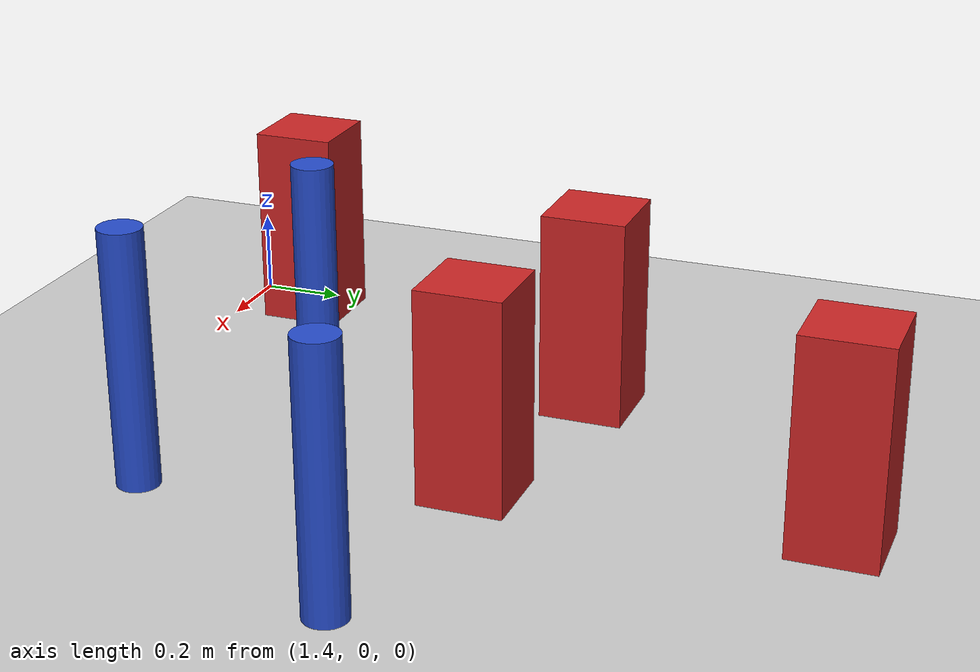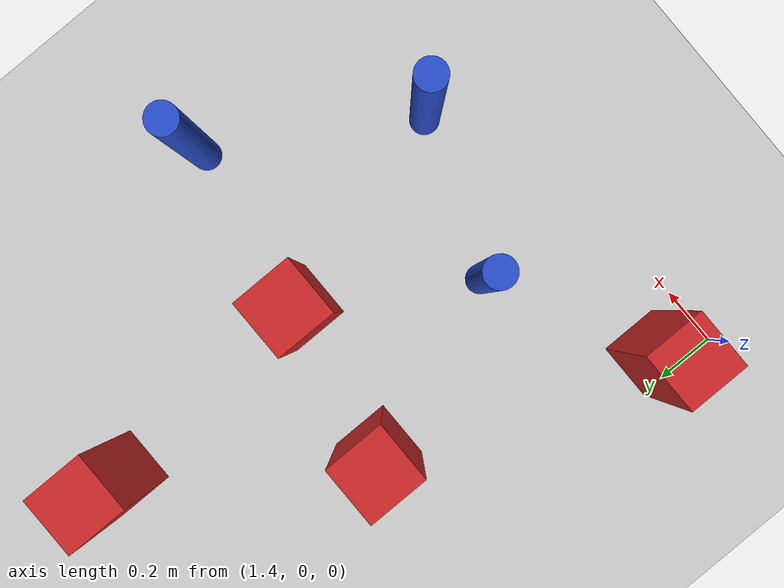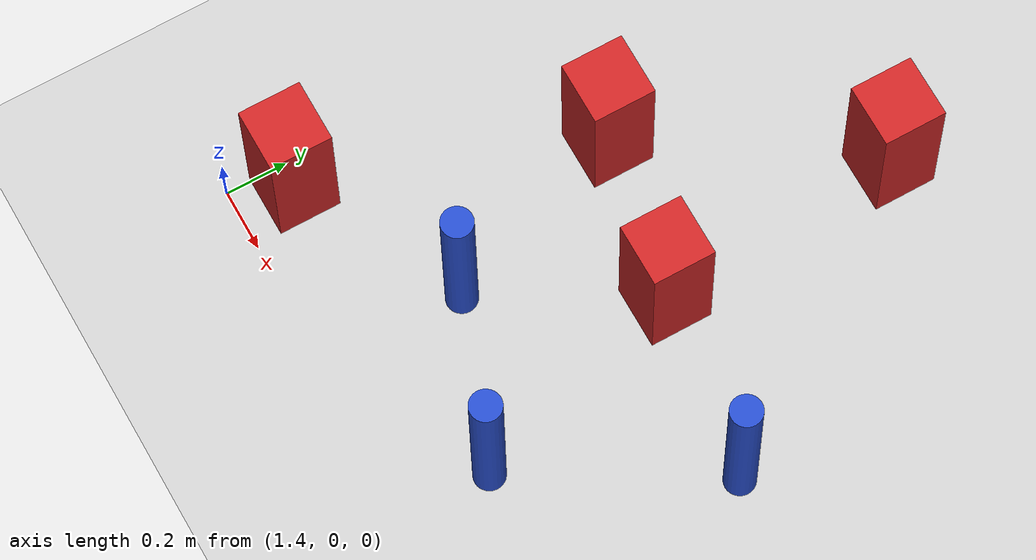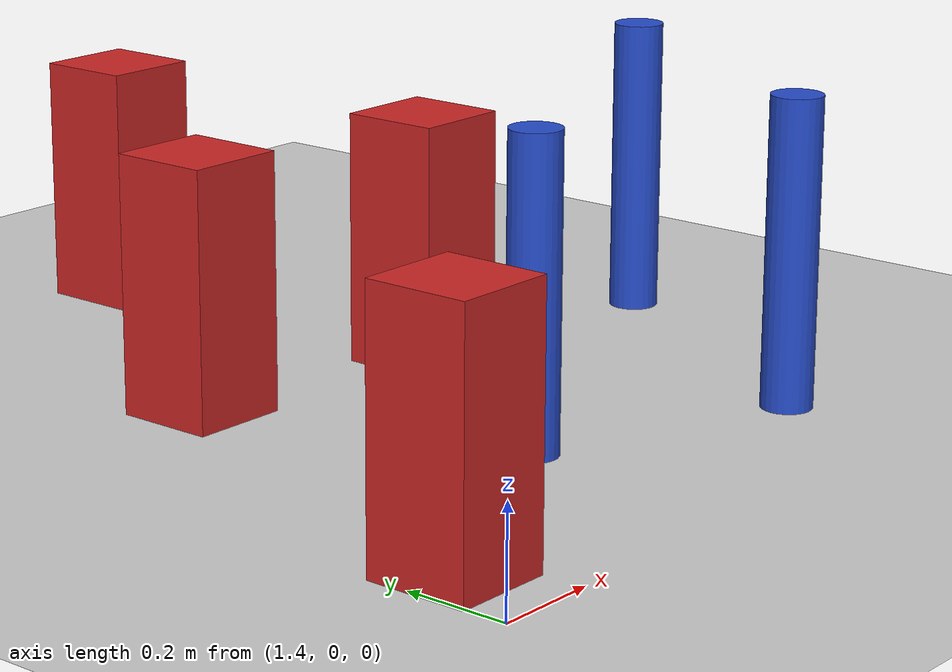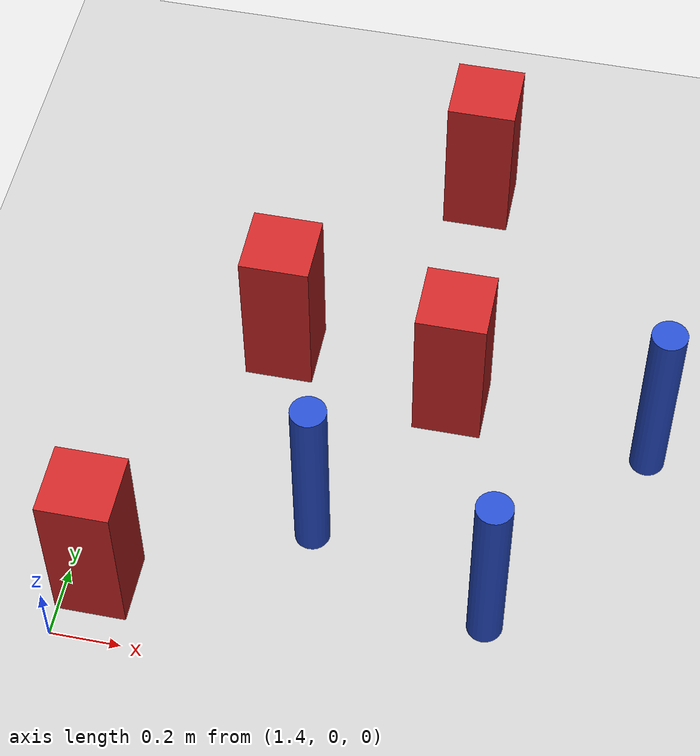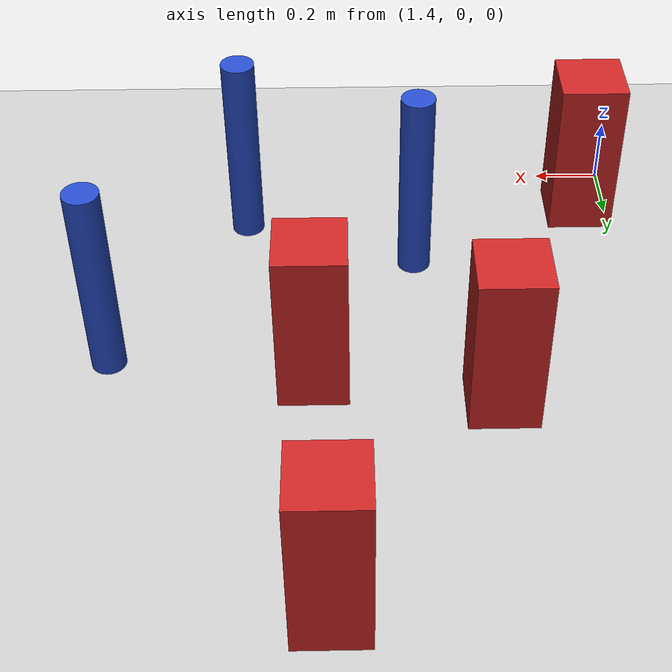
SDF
<sdf version="1.6">
 <world name="default">
  <model name="ground_plane">
   <static>1</static>
   <link name="link">
    <collision name="collision">
     <geometry><plane><normal>0 0 1</normal><size>100 100</size></plane></geometry>
     <surface><friction><ode><mu>100</mu><mu2>50</mu2></ode></friction></surface>
    </collision>
    <visual name="visual">
     <cast_shadows>0</cast_shadows>
     <geometry><plane><normal>0 0 1</normal><size>100 100</size></plane></geometry>
     <material>
      <ambient>1.0 1.0 1.0 1.0</ambient>
      <diffuse>0.8 0.8 0.8 1.0</diffuse>
      <specular>0.01 0.01 0.01 1.000000</specular>
     </material>
    </visual>
   </link>
  </model>
  <model name="pole_obstacle56">
   <static>true</static>
   <pose>2.03568391977 0.451290150566 7.38925637345e-09 -8.47170692799e-08 1.24976765122e-08 -1.74513093015e-07</pose>
   <link name="link">
    <pose>0 0 0.3 0 -0 0</pose>
    <inertial>
     <mass>1</mass>
     <inertia><ixx>0.145833</ixx><ixy>0</ixy><ixz>0</ixz><iyy>0.145833</iyy><iyz>0</iyz><izz>0.125</izz></inertia>
    </inertial>
    <collision name="collision">
     <geometry><cylinder><radius>0.05</radius><length>.6</length></cylinder></geometry>
    </collision>
    <visual name="visual">
     <geometry><cylinder><radius>0.05</radius><length>.6</length></cylinder></geometry>
     <material>
      <script><name>Gazebo/Blue</name><uri>file://media/materials/scripts/gazebo.material</uri></script>
     </material>
    </visual>
   </link>
  </model>
  <model name="pole_obstacle100">
   <static>true</static>
   <pose>2.55865952431 0.255963174134 7.38925637345e-09 -8.471706928e-08 1.24976765126e-08 -1.74513093015e-07</pose>
   <link name="link">
    <pose>0 0 0.3 0 -0 0</pose>
    <inertial>
     <mass>1</mass>
     <inertia><ixx>0.145833</ixx><ixy>0</ixy><ixz>0</ixz><iyy>0.145833</iyy><iyz>0</iyz><izz>0.125</izz></inertia>
    </inertial>
    <collision name="collision">
     <geometry><cylinder><radius>0.05</radius><length>.6</length></cylinder></geometry>
    </collision>
    <visual name="visual">
     <geometry><cylinder><radius>0.05</radius><length>.6</length></cylinder></geometry>
     <material>
      <script><name>Gazebo/Blue</name><uri>file://media/materials/scripts/gazebo.material</uri></script>
     </material>
    </visual>
   </link>
  </model>
  <model name="square_post_obstacle98">
   <static>true</static>
   <pose>2.34094670929 0.967388931751 1.91545236811e-07 -7.35059704564e-06 1.12565212e-07 2.39332434364e-05</pose>
   <link name="link">
    <pose>0 0 0.25 0 -0 0</pose>
    <inertial>
     <mass>100</mass>
     <inertia>
      <ixx>0.166667</ixx>
      <ixy>0</ixy>
      <ixz>0</ixz>
      <iyy>0.166667</iyy>
      <iyz>0</iyz>
      <izz>0.166667</izz>
     </inertia>
    </inertial>
    <collision name="collision"><geometry><box><size>.2 .2 .5</size></box></geometry></collision>
    <visual name="visual">
     <geometry><box><size>.2 .2 .5</size></box></geometry>
     <material>
      <script><name>Gazebo/Red</name><uri>file://media/materials/scripts/gazebo.material</uri></script>
     </material>
    </visual>
   </link>
  </model>
  <model name="square_post_obstacle108">
   <static>true</static>
   <pose>1.82022127979 1.06612872411 1.91545236811e-07 -7.35059704564e-06 1.12565212e-07 2.39332434364e-05</pose>
   <link name="link">
    <pose>0 0 0.25 0 -0 0</pose>
    <inertial>
     <mass>100</mass>
     <inertia>
      <ixx>0.166667</ixx>
      <ixy>0</ixy>
      <ixz>0</ixz>
      <iyy>0.166667</iyy>
      <iyz>0</iyz>
      <izz>0.166667</izz>
     </inertia>
    </inertial>
    <collision name="collision"><geometry><box><size>.2 .2 .5</size></box></geometry></collision>
    <visual name="visual">
     <geometry><box><size>.2 .2 .5</size></box></geometry>
     <material>
      <script><name>Gazebo/Red</name><uri>file://media/materials/scripts/gazebo.material</uri></script>
     </material>
    </visual>
   </link>
  </model>
  <model name="square_post_obstacle134">
   <static>true</static>
   <pose>2.29128909394 1.76275824219 1.91545236811e-07 -7.35059704564e-06 1.12565212e-07 2.39332434364e-05</pose>
   <link name="link">
    <pose>0 0 0.25 0 -0 0</pose>
    <inertial>
     <mass>100</mass>
     <inertia>
      <ixx>0.166667</ixx>
      <ixy>0</ixy>
      <ixz>0</ixz>
      <iyy>0.166667</iyy>
      <iyz>0</iyz>
      <izz>0.166667</izz>
     </inertia>
    </inertial>
    <collision name="collision"><geometry><box><size>.2 .2 .5</size></box></geometry></collision>
    <visual name="visual">
     <geometry><box><size>.2 .2 .5</size></box></geometry>
     <material>
      <script><name>Gazebo/Red</name><uri>file://media/materials/scripts/gazebo.material</uri></script>
     </material>
    </visual>
   </link>
  </model>
  <model name="pole_obstacle179">
   <static>true</static>
   <pose>2.9282415062 0.884010751341 7.38925637345e-09 -8.471706928e-08 1.24976765177e-08 -1.74513093012e-07</pose>
   <link name="link">
    <pose>0 0 0.3 0 -0 0</pose>
    <inertial>
     <mass>1</mass>
     <inertia><ixx>0.145833</ixx><ixy>0</ixy><ixz>0</ixz><iyy>0.145833</iyy><iyz>0</iyz><izz>0.125</izz></inertia>
    </inertial>
    <collision name="collision">
     <geometry><cylinder><radius>0.05</radius><length>.6</length></cylinder></geometry>
    </collision>
    <visual name="visual">
     <geometry><cylinder><radius>0.05</radius><length>.6</length></cylinder></geometry>
     <material>
      <script><name>Gazebo/Blue</name><uri>file://media/materials/scripts/gazebo.material</uri></script>
     </material>
    </visual>
   </link>
  </model>
  <model name="square_post_obstacle200">
   <static>true</static>
   <pose>1.49290462767 0.180411513359 1.91545236811e-07 -7.35059704564e-06 1.12565212e-07 2.39332434364e-05</pose>
   <link name="link">
    <pose>0 0 0.25 0 -0 0</pose>
    <inertial>
     <mass>100</mass>
     <inertia>
      <ixx>0.166667</ixx>
      <ixy>0</ixy>
      <ixz>0</ixz>
      <iyy>0.166667</iyy>
      <iyz>0</iyz>
      <izz>0.166667</izz>
     </inertia>
    </inertial>
    <collision name="collision"><geometry><box><size>.2 .2 .5</size></box></geometry></collision>
    <visual name="visual">
     <geometry><box><size>.2 .2 .5</size></box></geometry>
     <material>
      <script><name>Gazebo/Red</name><uri>file://media/materials/scripts/gazebo.material</uri></script>
     </material>
    </visual>
   </link>
  </model>
 </world>
</sdf>
